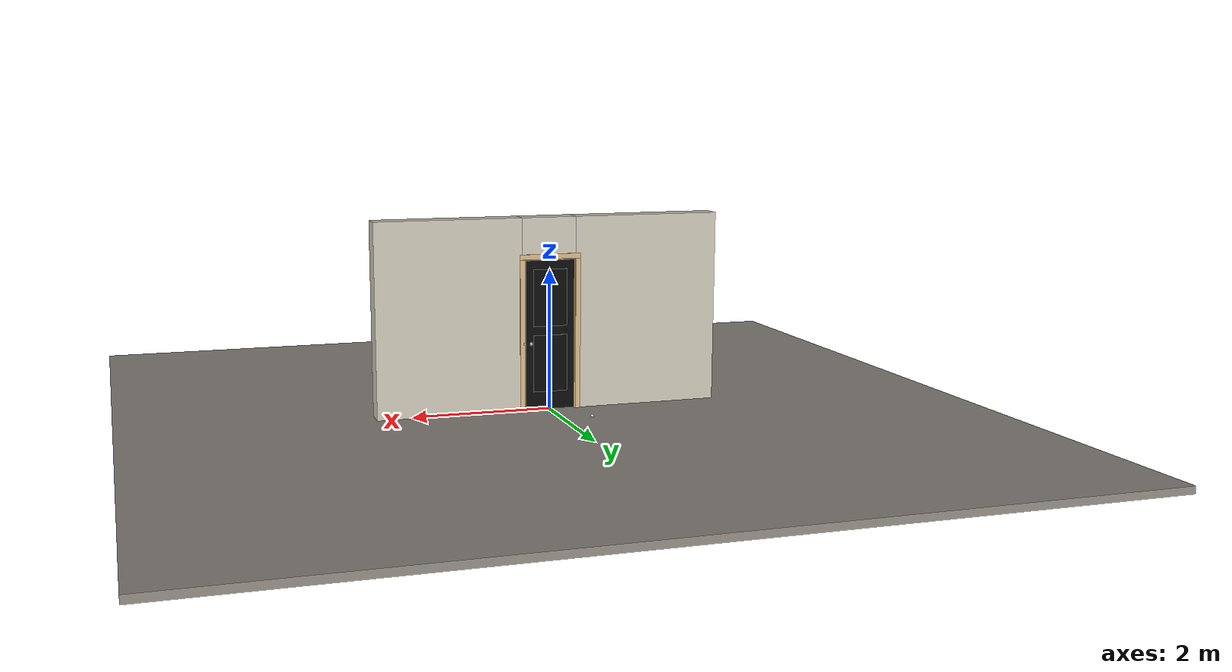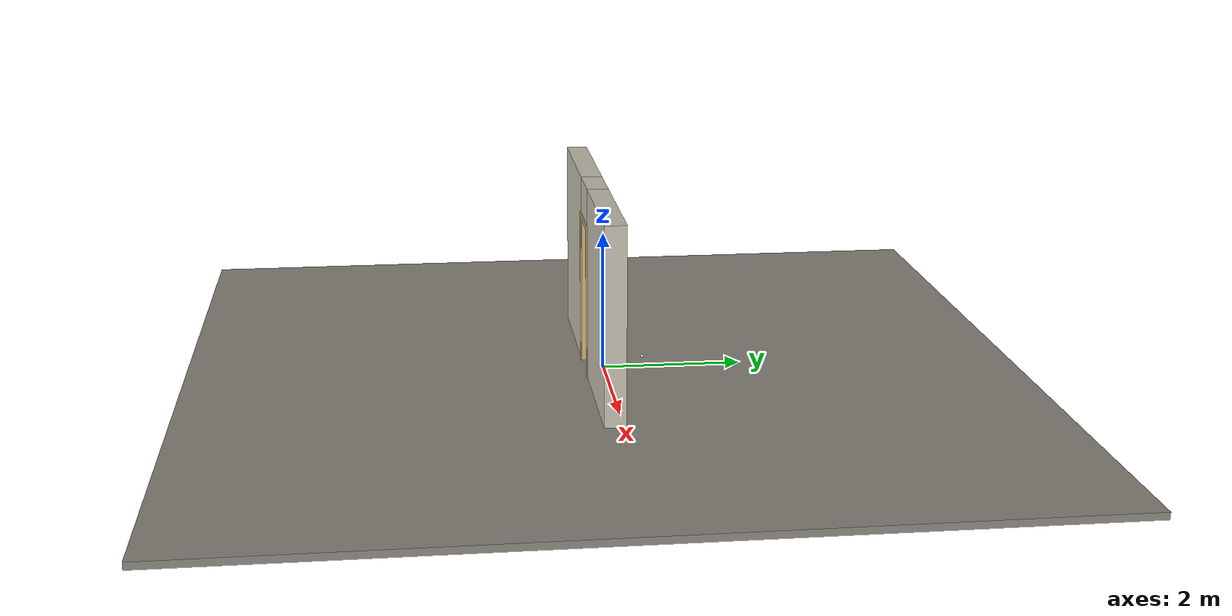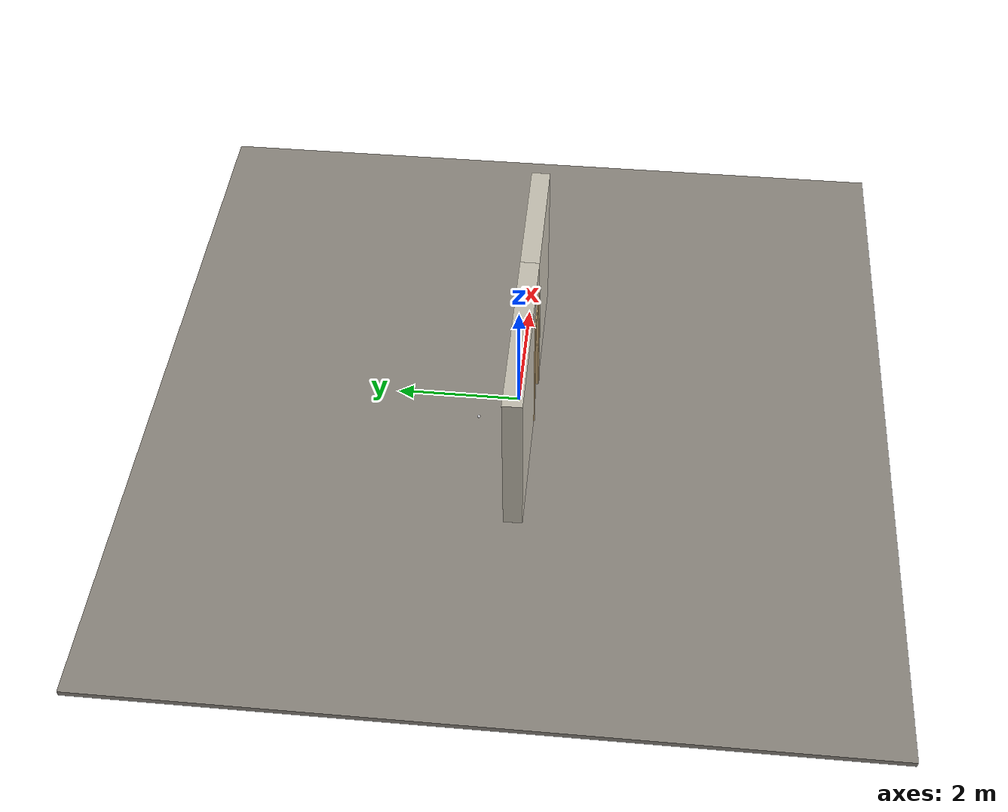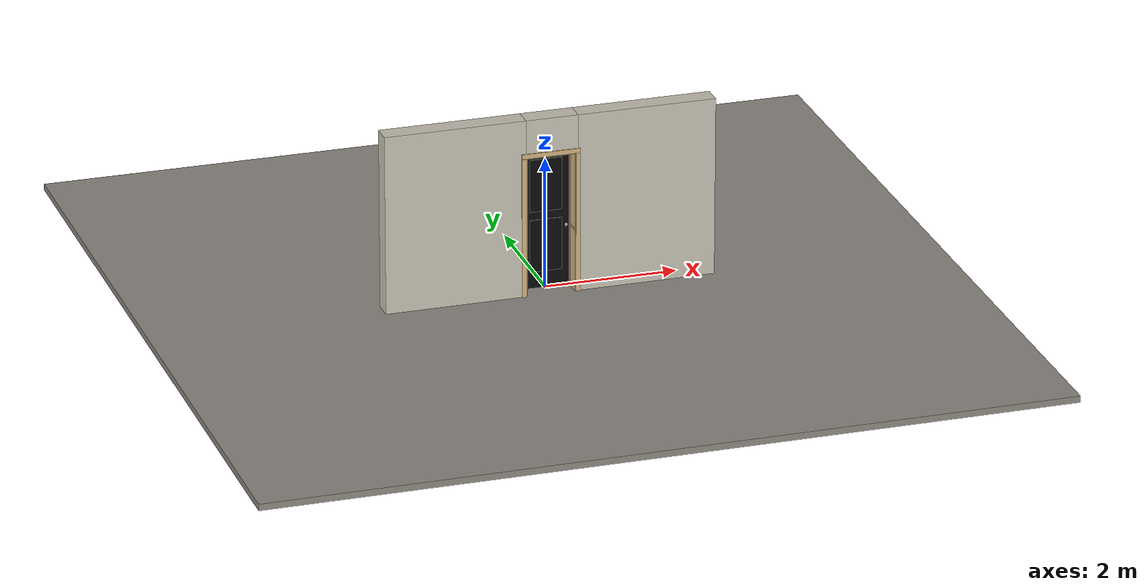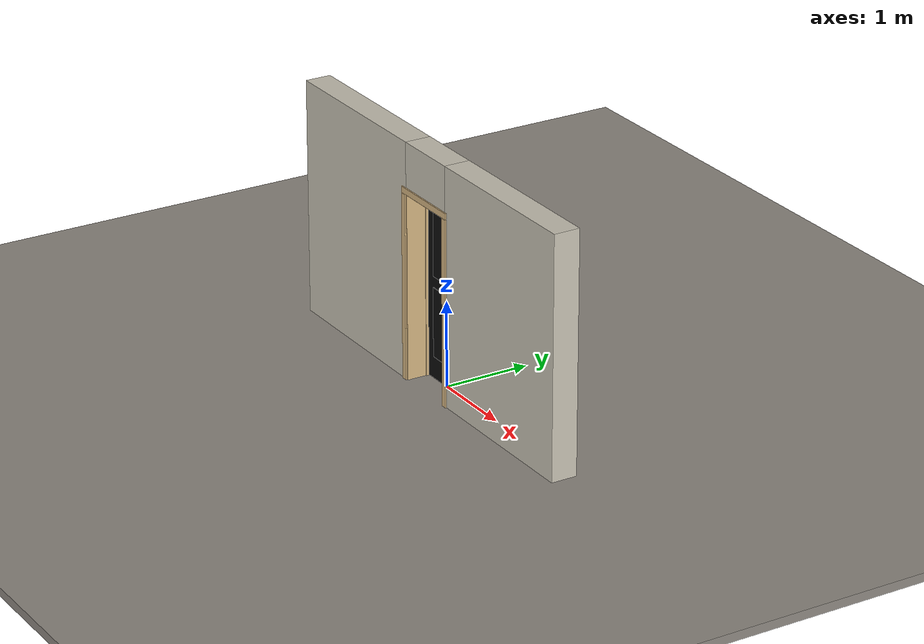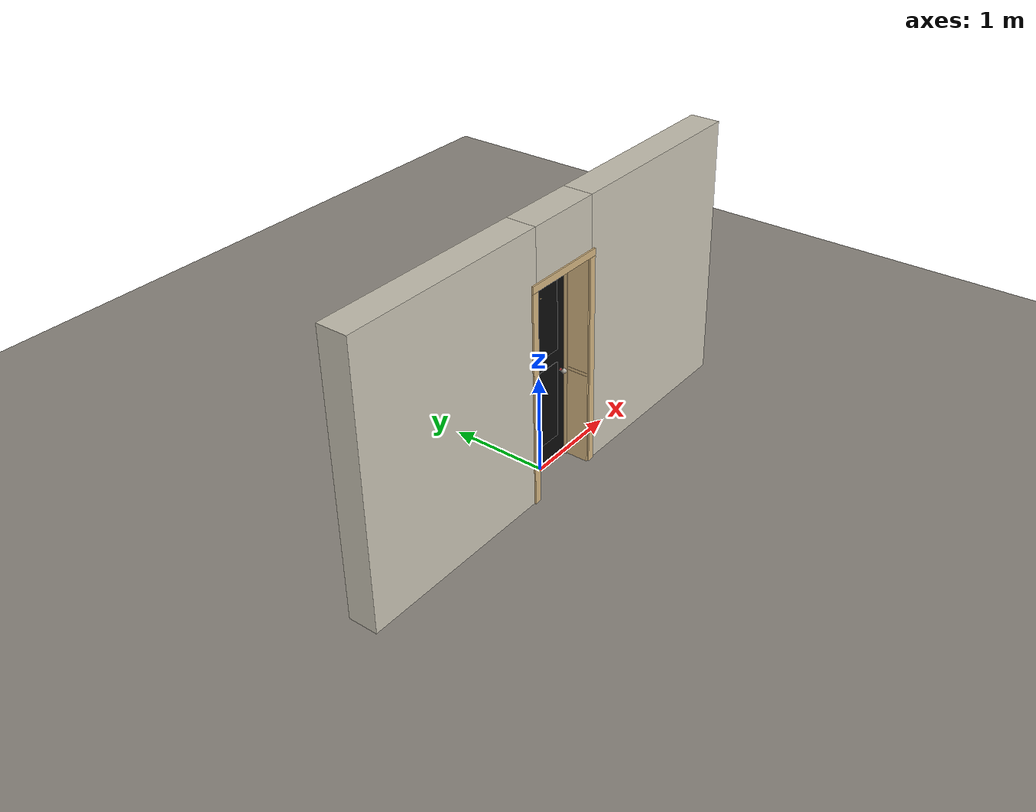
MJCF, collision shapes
<?xml version="1.0" ?>
<mujoco model="db0303_swing_single_full">
  <compiler angle="radian" meshdir="../../hardware" texturedir="../../textures" autolimits="true" inertiafromgeom="false"/>
  <option timestep="0.002" integrator="implicitfast" cone="elliptic" impratio="10" noslip_iterations="3">
    <flag multiccd="enable"/>
  </option>
  <size memory="16M"/>
  <default>
    <geom condim="4" solref="0.005 1" solimp="0.95 0.99 0.001"/>
    <joint solreflimit="0.005 1" solimplimit="0.95 0.99 0.001"/>
    <tendon solreflimit="0.005 1"/>
    <equality solref="0.002 1"/>
  </default>
  <visual>
    <headlight ambient="0.4 0.4 0.4" diffuse="0.7 0.7 0.7" specular="0.2 0.2 0.2"/>
    <quality shadowsize="4096"/>
    <map znear="0.01" zfar="60"/>
  </visual>
  <asset>
    <mesh name="hinge_96510cf394" file="hinge_96510cf394.obj"/>
    <mesh name="hinge_jamb_7fd4ca52b2" file="hinge_jamb_7fd4ca52b2.obj"/>
    <mesh name="knob_248d825e64" file="knob_248d825e64.obj"/>
    <mesh name="knob_d1888f6f03" file="knob_d1888f6f03.obj"/>
    <mesh name="wreath_eea1ff3119" file="wreath_eea1ff3119.obj"/>
    <material name="mat_floor" rgba="0.55 0.53 0.5 1" specular="0.2" shininess="0.15" reflectance="0"/>
    <material name="mat_wall" rgba="0.78 0.76 0.7 1" specular="0.2" shininess="0.1" reflectance="0"/>
    <material name="mat_leaf" rgba="0.04 0.04 0.04 1" specular="0.2" shininess="0.46" reflectance="0"/>
    <material name="mat_leaf_panel" rgba="0.037 0.037 0.037 1" specular="0.2" shininess="0.46" reflectance="0"/>
    <material name="mat_hinge" rgba="0.65 0.66 0.68 1" specular="0.74" shininess="0.5" reflectance="0.36"/>
    <material name="mat_op_nickel_satin" rgba="0.72 0.7 0.66 1" specular="0.8" shininess="0.65" reflectance="0.4"/>
    <material name="mat_trim" rgba="0.85 0.66 0.3 1" specular="0.8" shininess="0.75" reflectance="0.4"/>
    <material name="mat_bolt" rgba="0.85 0.66 0.3 1" specular="0.8" shininess="0.75" reflectance="0.4"/>
    <material name="mat_frame" rgba="0.82 0.7 0.5 1" specular="0.2" shininess="0.45" reflectance="0"/>
    <material name="mat_wreath" rgba="0.12 0.3 0.12 1" specular="0.2" shininess="0.05" reflectance="0"/>
    <material name="mat_wreath_hook" rgba="0.85 0.66 0.3 1" specular="0.8" shininess="0.75" reflectance="0.4"/>
    <material name="mat_stop" rgba="0.9 0.9 0.92 1" specular="0.8" shininess="0.9" reflectance="0.4"/>
    <texture name="skybox" type="skybox" builtin="gradient" rgb1="0.6 0.7 0.85" rgb2="0.9 0.92 0.95" width="256" height="256"/>
  </asset>
  <worldbody>
    <light name="sun" pos="1.5 -2.5 4" dir="-0.3 0.5 -0.8" directional="true" diffuse="0.8 0.8 0.8" specular="0.3 0.3 0.3" castshadow="true"/>
    <light name="fill" pos="-1.5 2.5 3" dir="0.3 -0.5 -0.7" directional="true" diffuse="0.35 0.35 0.4" castshadow="false"/>
    <camera name="robot_view" pos="0 -2.763313 1.812087" xyaxes="1 0 0 0 0.26963 0.962964" fovy="52"/>
    <camera name="far_view" pos="0 2.512312 1.812087" xyaxes="-1 0 0 0 -0.26963 0.962964" fovy="52"/>
    <camera name="iso" pos="2.004737 -2.341263 2.234138" xyaxes="0.741536 0.670913 0 -0.242917 0.268487 0.932151" fovy="46"/>
    <camera name="detail_handle" pos="0.475 -0.864 1.245" xyaxes="0.97561 0.219512 0 -0.070934 0.315262 0.94635" fovy="38"/>
    <geom name="floor" type="box" size="6 6 0.05" pos="0 0 -0.05" material="mat_floor" group="0" contype="1" conaffinity="1" friction="0.8 0.005 0.0001" density="2400"/>
    <geom name="wall_left" type="box" size="1.061 0.15 1.3735" pos="-1.439 -0.1255 1.3735" material="mat_wall" group="0" contype="1" conaffinity="1" friction="0.6 0.005 0.0001" density="800"/>
    <geom name="wall_right" type="box" size="1.046 0.15 1.3735" pos="1.454 -0.1255 1.3735" material="mat_wall" group="0" contype="1" conaffinity="1" friction="0.6 0.005 0.0001" density="800"/>
    <geom name="wall_header" type="box" size="0.393 0.15 0.2755" pos="0.015 -0.1255 2.4715" material="mat_wall" group="0" contype="1" conaffinity="1" friction="0.6 0.005 0.0001" density="800"/>
    <geom name="hinge_0_jamb" type="mesh" mesh="hinge_jamb_7fd4ca52b2" pos="-0.356 0.0245 0.259" quat="0 1 0 0" material="mat_hinge" group="1" contype="0" conaffinity="0" density="7850"/>
    <geom name="hinge_1_jamb" type="mesh" mesh="hinge_jamb_7fd4ca52b2" pos="-0.356 0.0245 1.076" quat="0 1 0 0" material="mat_hinge" group="1" contype="0" conaffinity="0" density="7850"/>
    <geom name="hinge_2_jamb" type="mesh" mesh="hinge_jamb_7fd4ca52b2" pos="-0.356 0.0245 1.963" quat="0 1 0 0" material="mat_hinge" group="1" contype="0" conaffinity="0" density="7850"/>
    <geom name="jamb_hinge" type="box" size="0.0095 0.15 1.0735" pos="-0.3685 -0.1255 1.0735" material="mat_frame" group="0" contype="1" conaffinity="1" friction="0.6 0.005 0.0001" density="400"/>
    <geom name="strike_965_wall_n" type="box" size="0.0245 0.133825 0.0167" pos="0.3835 -0.141675 0.965" material="mat_frame" group="0" contype="1" conaffinity="1" friction="0.6 0.005 0.0001" density="400"/>
    <geom name="strike_965_wall_p" type="box" size="0.0245 0.008 0.0167" pos="0.3835 0.01585 0.965" material="mat_frame" group="0" contype="1" conaffinity="1" friction="0.6 0.005 0.0001" density="400"/>
    <geom name="strike_965_ramp" type="box" size="0.0245 0.01649 0.0167" pos="0.388136 0.028673 0.965" quat="0.977148 0 0 -0.212558" material="mat_frame" group="0" contype="1" conaffinity="1" friction="0.12 0.005 0.0001" density="400"/>
    <geom name="strike_965_back" type="box" size="0.01615 0.00785 0.0167" pos="0.39185 0 0.965" material="mat_frame" group="0" contype="1" conaffinity="1" friction="0.6 0.005 0.0001" density="400"/>
    <geom name="jamb_strike_0" type="box" size="0.0245 0.15 0.47415" pos="0.3835 -0.1255 0.47415" material="mat_frame" group="0" contype="1" conaffinity="1" friction="0.6 0.005 0.0001" density="400"/>
    <geom name="jamb_strike_1" type="box" size="0.0245 0.15 0.58265" pos="0.3835 -0.1255 1.56435" material="mat_frame" group="0" contype="1" conaffinity="1" friction="0.6 0.005 0.0001" density="400"/>
    <geom name="jamb_head" type="box" size="0.393 0.15 0.0095" pos="0.015 -0.1255 2.1565" material="mat_frame" group="0" contype="1" conaffinity="1" friction="0.6 0.005 0.0001" density="400"/>
    <geom name="head_stud" type="box" size="0.393 0.15 0.015" pos="0.015 -0.1255 2.181" material="mat_wall" group="0" contype="1" conaffinity="1" friction="0.6 0.005 0.0001" density="500"/>
    <geom name="stop_hinge" type="box" size="0.0055 0.016 1.0735" pos="-0.3535 -0.034 1.0735" material="mat_frame" group="0" contype="1" conaffinity="1" friction="0.6 0.005 0.0001" density="400"/>
    <geom name="stop_strike" type="box" size="0.0055 0.016 1.0735" pos="0.3535 -0.034 1.0735" material="mat_frame" group="0" contype="1" conaffinity="1" friction="0.6 0.005 0.0001" density="400"/>
    <geom name="stop_head" type="box" size="0.359 0.016 0.0055" pos="0 -0.034 2.1415" material="mat_frame" group="0" contype="1" conaffinity="1" friction="0.6 0.005 0.0001" density="400"/>
    <geom name="casing_l_n" type="box" size="0.035 0.008 1.083" pos="-0.408 -0.2835 1.0735" material="mat_frame" group="2" contype="0" conaffinity="0" density="400"/>
    <geom name="casing_r_n" type="box" size="0.035 0.008 1.083" pos="0.408 -0.2835 1.0735" material="mat_frame" group="2" contype="0" conaffinity="0" density="400"/>
    <geom name="casing_h_n" type="box" size="0.443 0.008 0.035" pos="0 -0.2835 2.196" material="mat_frame" group="2" contype="0" conaffinity="0" density="400"/>
    <geom name="casing_l_p" type="box" size="0.035 0.008 1.083" pos="-0.408 0.0325 1.0735" material="mat_frame" group="2" contype="0" conaffinity="0" density="400"/>
    <geom name="casing_r_p" type="box" size="0.035 0.008 1.083" pos="0.408 0.0325 1.0735" material="mat_frame" group="2" contype="0" conaffinity="0" density="400"/>
    <geom name="casing_h_p" type="box" size="0.443 0.008 0.035" pos="0 0.0325 2.196" material="mat_frame" group="2" contype="0" conaffinity="0" density="400"/>
    <geom name="floor_stop_dome" type="sphere" size="0.025" pos="-0.428596 0.624807 0" material="mat_stop" group="0" contype="1" conaffinity="1" friction="0.6 0.005 0.0001" density="7000"/>
    <site name="approach_point" pos="0 -1.5 0" quat="1 0 0 0" size="0.05" rgba="0.2 0.9 0.2 0.5" group="4"/>
    <site name="goal_point" pos="0 1.5 0" quat="1 0 0 0" size="0.05" rgba="0.2 0.9 0.2 0.5" group="4"/>
    <site name="door_plane_center" pos="0 0 1.0735" quat="1 0 0 0" size="0.02" rgba="0.2 0.9 0.2 0.5" group="4"/>
    <body name="leaf" pos="-0.359 0 0">
      <inertial pos="0.347358 -0.006565 1.139296" mass="11.879175" quat="0.503622 -0.495755 0.499219 0.50137" diaginertia="0.506735491 4.496372695 4.990227155"/>
      <joint name="leaf_hinge" type="hinge" axis="0 0 1" pos="0.003 0.0245 0" limited="true" range="0 1.658063" damping="0.14849" frictionloss="0.246323" armature="0.02"/>
      <geom name="leaf_slab" type="box" size="0.3555 0.0175 1.067" pos="0.3585 0 1.076" material="mat_leaf" group="0" contype="1" conaffinity="1" friction="0.35 0.005 0.0001" density="1"/>
      <geom name="leaf_panel_0_n" type="box" size="0.2455 0.003 0.40564" pos="0.3585 -0.0205 0.66938" material="mat_leaf_panel" group="1" contype="0" conaffinity="0" density="1"/>
      <geom name="leaf_panel_0_p" type="box" size="0.2455 0.003 0.40564" pos="0.3585 0.0205 0.66938" material="mat_leaf_panel" group="1" contype="0" conaffinity="0" density="1"/>
      <geom name="leaf_panel_1_n" type="box" size="0.2455 0.003 0.40564" pos="0.3585 -0.0205 1.61066" material="mat_leaf_panel" group="1" contype="0" conaffinity="0" density="1"/>
      <geom name="leaf_panel_1_p" type="box" size="0.2455 0.003 0.40564" pos="0.3585 0.0205 1.61066" material="mat_leaf_panel" group="1" contype="0" conaffinity="0" density="1"/>
      <geom name="hinge_0" type="mesh" mesh="hinge_96510cf394" pos="0.003 0.0245 0.259" quat="0 1 0 0" material="mat_hinge" group="1" contype="0" conaffinity="0" density="7850"/>
      <geom name="hinge_1" type="mesh" mesh="hinge_96510cf394" pos="0.003 0.0245 1.076" quat="0 1 0 0" material="mat_hinge" group="1" contype="0" conaffinity="0" density="7850"/>
      <geom name="hinge_2" type="mesh" mesh="hinge_96510cf394" pos="0.003 0.0245 1.963" quat="0 1 0 0" material="mat_hinge" group="1" contype="0" conaffinity="0" density="7850"/>
      <geom name="leaf_latch_bolt_faceplate" type="box" size="0.0006 0.01235 0.0267" pos="0.7134 0 0.965" material="mat_bolt" group="1" contype="0" conaffinity="0" density="8500"/>
      <geom name="wreath" type="mesh" mesh="wreath_eea1ff3119" pos="0.3585 -0.0175 1.67352" quat="0.707107 0.707107 0 0" material="mat_wreath" group="2" contype="0" conaffinity="0" density="200"/>
      <geom name="wreath_hook" type="cylinder" size="0.004 0.008" pos="0.3585 -0.0245 1.83927" quat="0.707107 -0.707107 0 0" material="mat_wreath_hook" group="2" contype="0" conaffinity="0" density="8500"/>
      <site name="leaf_edge_mid" pos="0.714 0 1.067" quat="1 0 0 0" size="0.02" rgba="0.2 0.9 0.2 0.5" group="4"/>
      <body name="leaf_handle" pos="0.654 0 0.965">
        <inertial pos="0 -0.000216 0" mass="1.146661" quat="0.5 0.5 0.5 0.5" diaginertia="0.000312402 0.003728942 0.003728942"/>
        <joint name="leaf_handle_hinge" type="hinge" axis="0 -1 0" limited="true" range="0 0.87" damping="0.143613" frictionloss="0.038" stiffness="0.5" springref="-0.5" armature="0.01"/>
        <geom name="leaf_handle_spindle" type="cylinder" size="0.006 0.0255" pos="0 0 0" quat="0.707107 -0.707107 0 0" material="mat_op_nickel_satin" group="1" contype="0" conaffinity="0" density="7850"/>
        <geom name="leaf_handle_knob_n" type="mesh" mesh="knob_248d825e64" pos="0 -0.0175 0" quat="0.707107 0.707107 0 0" material="mat_op_nickel_satin" group="1" contype="0" conaffinity="0" density="3000"/>
        <geom name="leaf_handle_knob_col_n" type="sphere" size="0.0243" pos="0 -0.064 0" material="mat_op_nickel_satin" group="0" contype="1" conaffinity="1" friction="0.9 0.01 0.0001" density="3000"/>
        <geom name="leaf_handle_knob_neck_n" type="cylinder" size="0.011 0.012" pos="0 -0.0295 0" quat="0.707107 -0.707107 0 0" material="mat_op_nickel_satin" group="3" contype="1" conaffinity="1" rgba="0.8 0.3 0.3 0.25" friction="0.6 0.005 0.0001" density="3000"/>
        <geom name="leaf_handle_knob_p" type="mesh" mesh="knob_d1888f6f03" pos="0 0.0175 0" quat="-0.707107 0.707107 0 0" material="mat_op_nickel_satin" group="1" contype="0" conaffinity="0" density="3000"/>
        <geom name="leaf_handle_knob_col_p" type="sphere" size="0.0243" pos="0 0.064 0" material="mat_op_nickel_satin" group="0" contype="1" conaffinity="1" friction="0.9 0.01 0.0001" density="3000"/>
        <geom name="leaf_handle_knob_neck_p" type="cylinder" size="0.011 0.012" pos="0 0.0295 0" quat="0.707107 -0.707107 0 0" material="mat_op_nickel_satin" group="3" contype="1" conaffinity="1" rgba="0.8 0.3 0.3 0.25" friction="0.6 0.005 0.0001" density="3000"/>
        <site name="leaf_handle_grip_n" pos="0 -0.064 0" quat="1 0 0 0" size="0.012" rgba="0.2 0.9 0.2 0.5" group="4"/>
        <site name="leaf_handle_grip_p" pos="0 0.064 0" quat="1 0 0 0" size="0.012" rgba="0.2 0.9 0.2 0.5" group="4"/>
      </body>
      <body name="leaf_latch_bolt" pos="0.714 0 0.965">
        <inertial pos="-0.00865 0 0" mass="0.041419" quat="0.92388 -0.382683 0 0" diaginertia="0.000000798 0.000005598 0.000005598"/>
        <joint name="leaf_latch_bolt_slide" type="slide" axis="-1 0 0" limited="true" range="0 0.0127" damping="2" frictionloss="0.3" stiffness="300" springref="-0.008333" armature="0.1"/>
        <geom name="leaf_latch_bolt_capsule" type="capsule" size="0.00635 0.015" pos="-0.00865 0 0" quat="0.707107 0 0.707107 0" material="mat_bolt" group="0" contype="1" conaffinity="1" friction="0.2 0.005 0.0001" density="8500"/>
      </body>
    </body>
  </worldbody>
  <tendon>
    <fixed name="leaf_latch_bolt_coupling" limited="true" range="0 10">
      <joint joint="leaf_latch_bolt_slide" coef="1"/>
      <joint joint="leaf_handle_hinge" coef="-0.015679"/>
    </fixed>
  </tendon>
  <sensor>
    <jointpos name="leaf_hinge_pos" joint="leaf_hinge"/>
    <jointvel name="leaf_hinge_vel" joint="leaf_hinge"/>
    <jointpos name="leaf_handle_hinge_pos" joint="leaf_handle_hinge"/>
    <jointvel name="leaf_handle_hinge_vel" joint="leaf_handle_hinge"/>
    <jointpos name="leaf_latch_bolt_slide_pos" joint="leaf_latch_bolt_slide"/>
    <jointvel name="leaf_latch_bolt_slide_vel" joint="leaf_latch_bolt_slide"/>
  </sensor>
</mujoco>
